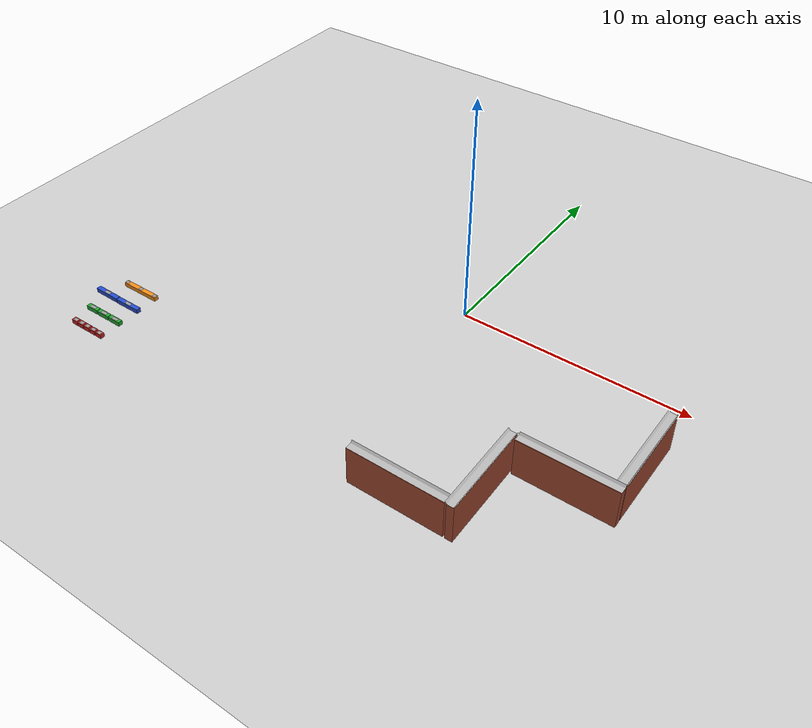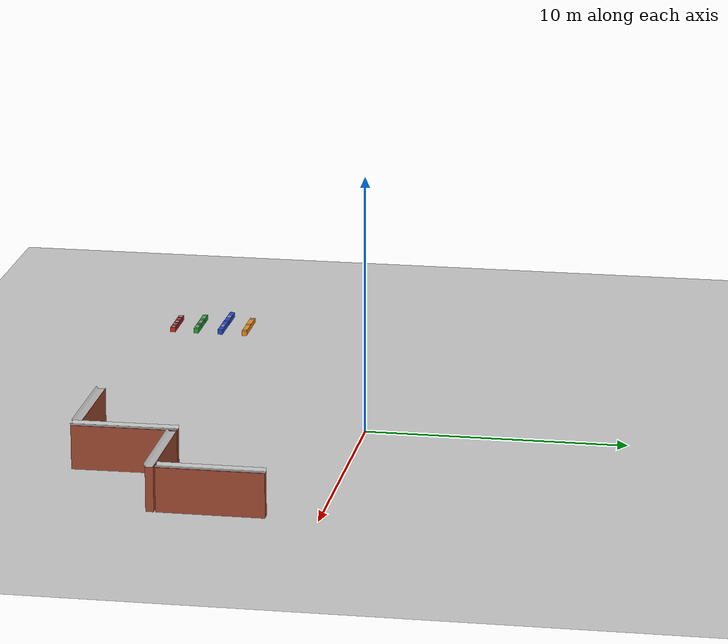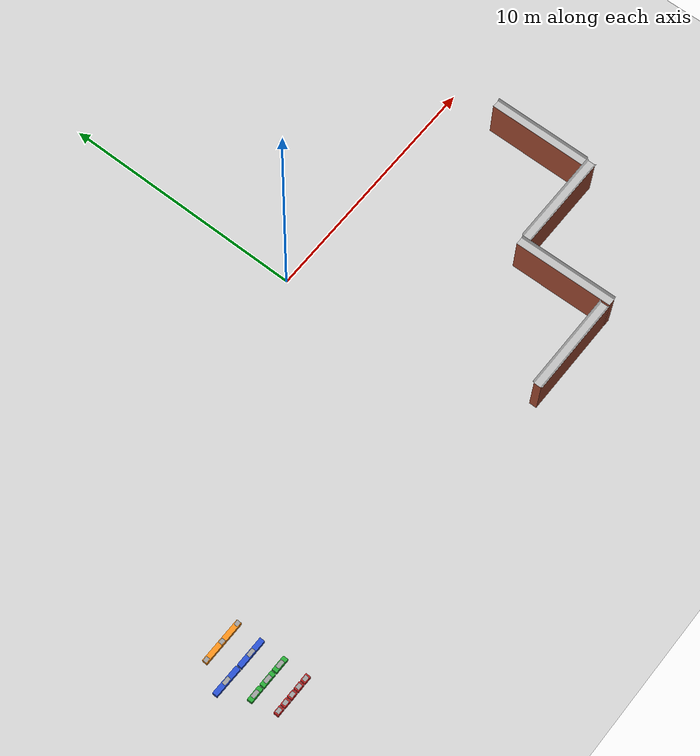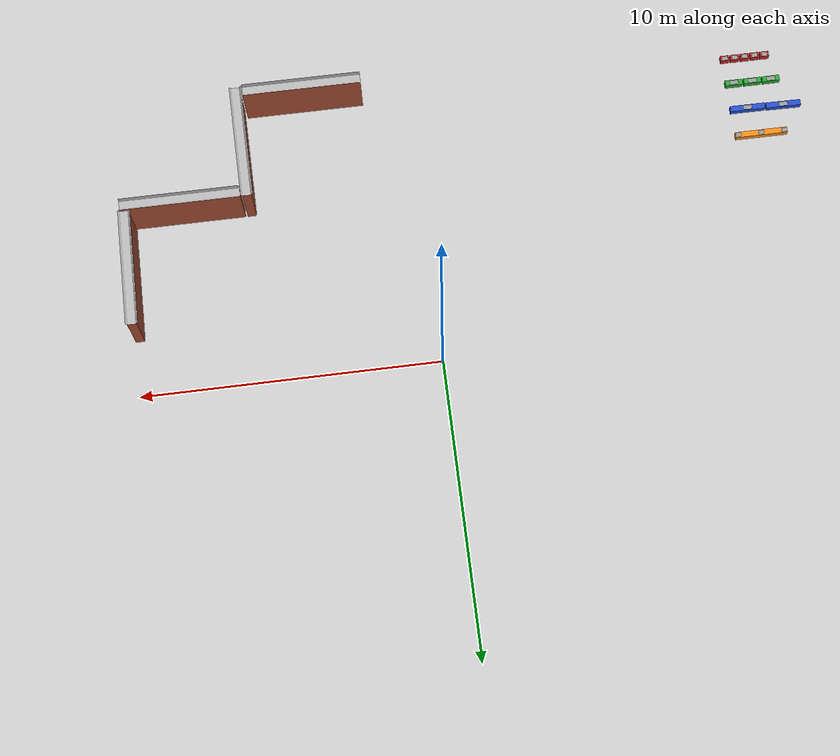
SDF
<sdf version="1.6">
 <world name="default">
  <model name="ground_plane">
   <static>1</static>
   <link name="link">
    <collision name="collision">
     <geometry><plane><normal>0 0 1</normal><size>100 100</size></plane></geometry>
     <surface>
      <contact><collide_bitmask>65535</collide_bitmask></contact>
      <friction><ode><mu>100</mu><mu2>50</mu2></ode></friction>
     </surface>
    </collision>
    <visual name="visual">
     <cast_shadows>0</cast_shadows>
     <geometry><plane><normal>0 0 1</normal><size>100 100</size></plane></geometry>
     <material>
      <script><uri>file://media/materials/scripts/gazebo.material</uri><name>Gazebo/Grey</name></script>
     </material>
    </visual>
   </link>
  </model>
  <model name="high_wall">
   <link name="brick_wall">
    <pose>0 0 0.85 0 -0 0</pose>
    <inertial>
     <mass>0.01</mass>
     <inertia><ixx>0.001</ixx><ixy>0</ixy><ixz>0</ixz><iyy>0.01</iyy><iyz>0</iyz><izz>0.01</izz></inertia>
    </inertial>
    <collision name="brick_wall_collision"><geometry><box><size>4 0.3 1.7</size></box></geometry></collision>
    <visual name="brick_wall_visual">
     <geometry><box><size>4 0.3 1.7</size></box></geometry>
     <material>
      <script><uri>file://media/materials/scripts/gazebo.material</uri><name>Gazebo/Bricks</name></script>
      <ambient>1 1 1 1</ambient>
     </material>
     <meta><layer>0</layer></meta>
    </visual>
   </link>
   <link name="channel">
    <pose>0 0 0.05 0 -0 0</pose>
    <inertial>
     <mass>0.01</mass>
     <inertia><ixx>0.001</ixx><ixy>0</ixy><ixz>0</ixz><iyy>0.01</iyy><iyz>0</iyz><izz>0.01</izz></inertia>
    </inertial>
    <collision name="channel_collision">
     <pose>0 0 1.7 0 -0 0</pose>
     <geometry>
      <mesh><uri>model://larics_gazebo_worlds/models/mbzirc/channel.dae</uri><scale>0.001 0.001 0.001</scale></mesh>
     </geometry>
    </collision>
    <visual name="channel_visual">
     <pose>0 0 1.7 0 -0 0</pose>
     <geometry>
      <mesh><uri>model://larics_gazebo_worlds/models/mbzirc/channel.dae</uri><scale>0.001 0.001 0.001</scale></mesh>
     </geometry>
    </visual>
   </link>
   <joint name="wall_brick" type="fixed"><child>channel</child><parent>brick_wall</parent></joint>
   <static>1</static>
   <pose>7.99888 -6.15157 0 0 -0 0</pose>
  </model>
  <model name="high_wall_1">
   <link name="brick_wall">
    <pose>0 0 0.85 0 -0 0</pose>
    <inertial>
     <mass>0.01</mass>
     <inertia><ixx>0.001</ixx><ixy>0</ixy><ixz>0</ixz><iyy>0.01</iyy><iyz>0</iyz><izz>0.01</izz></inertia>
    </inertial>
    <collision name="brick_wall_collision"><geometry><box><size>4 0.3 1.7</size></box></geometry></collision>
    <visual name="brick_wall_visual">
     <geometry><box><size>4 0.3 1.7</size></box></geometry>
     <material>
      <script><uri>file://media/materials/scripts/gazebo.material</uri><name>Gazebo/Bricks</name></script>
      <ambient>1 1 1 1</ambient>
     </material>
     <meta><layer>0</layer></meta>
    </visual>
   </link>
   <link name="channel">
    <pose>0 0 0.05 0 -0 0</pose>
    <inertial>
     <mass>0.01</mass>
     <inertia><ixx>0.001</ixx><ixy>0</ixy><ixz>0</ixz><iyy>0.01</iyy><iyz>0</iyz><izz>0.01</izz></inertia>
    </inertial>
    <collision name="channel_collision">
     <pose>0 0 1.7 0 -0 0</pose>
     <geometry>
      <mesh><uri>model://larics_gazebo_worlds/models/mbzirc/channel.dae</uri><scale>0.001 0.001 0.001</scale></mesh>
     </geometry>
    </collision>
    <visual name="channel_visual">
     <pose>0 0 1.7 0 -0 0</pose>
     <geometry>
      <mesh><uri>model://larics_gazebo_worlds/models/mbzirc/channel.dae</uri><scale>0.001 0.001 0.001</scale></mesh>
     </geometry>
    </visual>
   </link>
   <joint name="wall_brick" type="fixed"><child>channel</child><parent>brick_wall</parent></joint>
   <static>1</static>
   <pose>3.60405 -9.84494 0 0 -0 0</pose>
  </model>
  <model name="high_wall_2">
   <link name="brick_wall">
    <pose>0 0 0.85 0 -0 0</pose>
    <inertial>
     <mass>0.01</mass>
     <inertia><ixx>0.001</ixx><ixy>0</ixy><ixz>0</ixz><iyy>0.01</iyy><iyz>0</iyz><izz>0.01</izz></inertia>
    </inertial>
    <collision name="brick_wall_collision"><geometry><box><size>4 0.3 1.7</size></box></geometry></collision>
    <visual name="brick_wall_visual">
     <geometry><box><size>4 0.3 1.7</size></box></geometry>
     <material>
      <script><uri>file://media/materials/scripts/gazebo.material</uri><name>Gazebo/Bricks</name></script>
      <ambient>1 1 1 1</ambient>
     </material>
     <meta><layer>0</layer></meta>
    </visual>
   </link>
   <link name="channel">
    <pose>0 0 0.05 0 -0 0</pose>
    <inertial>
     <mass>0.01</mass>
     <inertia><ixx>0.001</ixx><ixy>0</ixy><ixz>0</ixz><iyy>0.01</iyy><iyz>0</iyz><izz>0.01</izz></inertia>
    </inertial>
    <collision name="channel_collision">
     <pose>0 0 1.7 0 -0 0</pose>
     <geometry>
      <mesh><uri>model://larics_gazebo_worlds/models/mbzirc/channel.dae</uri><scale>0.001 0.001 0.001</scale></mesh>
     </geometry>
    </collision>
    <visual name="channel_visual">
     <pose>0 0 1.7 0 -0 0</pose>
     <geometry>
      <mesh><uri>model://larics_gazebo_worlds/models/mbzirc/channel.dae</uri><scale>0.001 0.001 0.001</scale></mesh>
     </geometry>
    </visual>
   </link>
   <joint name="wall_brick" type="fixed"><child>channel</child><parent>brick_wall</parent></joint>
   <static>1</static>
   <pose>5.80516 -7.99976 -0 0 -0 1.58384</pose>
  </model>
  <model name="high_wall_0">
   <link name="brick_wall">
    <pose>0 0 0.85 0 -0 0</pose>
    <inertial>
     <mass>0.01</mass>
     <inertia><ixx>0.001</ixx><ixy>0</ixy><ixz>0</ixz><iyy>0.01</iyy><iyz>0</iyz><izz>0.01</izz></inertia>
    </inertial>
    <collision name="brick_wall_collision"><geometry><box><size>4 0.3 1.7</size></box></geometry></collision>
    <visual name="brick_wall_visual">
     <geometry><box><size>4 0.3 1.7</size></box></geometry>
     <material>
      <script><uri>file://media/materials/scripts/gazebo.material</uri><name>Gazebo/Bricks</name></script>
      <ambient>1 1 1 1</ambient>
     </material>
     <meta><layer>0</layer></meta>
    </visual>
   </link>
   <link name="channel">
    <pose>0 0 0.05 0 -0 0</pose>
    <inertial>
     <mass>0.01</mass>
     <inertia><ixx>0.001</ixx><ixy>0</ixy><ixz>0</ixz><iyy>0.01</iyy><iyz>0</iyz><izz>0.01</izz></inertia>
    </inertial>
    <collision name="channel_collision">
     <pose>0 0 1.7 0 -0 0</pose>
     <geometry>
      <mesh><uri>model://larics_gazebo_worlds/models/mbzirc/channel.dae</uri><scale>0.001 0.001 0.001</scale></mesh>
     </geometry>
    </collision>
    <visual name="channel_visual">
     <pose>0 0 1.7 0 -0 0</pose>
     <geometry>
      <mesh><uri>model://larics_gazebo_worlds/models/mbzirc/channel.dae</uri><scale>0.001 0.001 0.001</scale></mesh>
     </geometry>
    </visual>
   </link>
   <joint name="wall_brick" type="fixed"><child>channel</child><parent>brick_wall</parent></joint>
   <static>1</static>
   <pose>9.8453 -3.93823 -0 0 0 -1.57085</pose>
  </model>
  <model name="brick_red">
   <link name="base_link">
    <inertial>
     <mass>0.01</mass>
     <inertia><ixx>0.001</ixx><ixy>0</ixy><ixz>0</ixz><iyy>0.01</iyy><iyz>0</iyz><izz>0.01</izz></inertia>
    </inertial>
    <collision name="base_link_collision"><geometry><box><size>0.3 0.2 0.2</size></box></geometry></collision>
    <collision name="base_link_fixed_joint_lump__magnet_patch_collision_1">
     <pose>0 0 0.1 0 -0 0</pose>
     <geometry><box><size>0.1 0.025 0.0005</size></box></geometry>
    </collision>
    <visual name="base_link_visual">
     <geometry><box><size>0.3 0.2 0.2</size></box></geometry>
     <material>
      <script><name>Gazebo/Red</name><uri>file://media/materials/scripts/gazebo.material</uri></script>
     </material>
    </visual>
    <visual name="base_link_fixed_joint_lump__magnet_patch_visual_1">
     <pose>0 0 0.1 0 -0 0</pose>
     <geometry><box><size>0.2 0.15 0.001</size></box></geometry>
     <material>
      <script><name>Gazebo/Gray</name><uri>file://media/materials/scripts/gazebo.material</uri></script>
     </material>
    </visual>
   </link>
   <static>0</static>
   <plugin name="dipole_magnet" filename="libstorm_gazebo_dipole_magnet.so">
    <dipole_moment>0 0 1</dipole_moment>
    <shouldPublish>1</shouldPublish>
    <topicNs>magnet</topicNs>
    <updateRate>100</updateRate>
    <gain>1.0</gain>
    <bodyName>base_link</bodyName>
    <xyzOffset>0 0 -0.1</xyzOffset>
    <rpyOffset>0 -0 0</rpyOffset>
   </plugin>
   <pose>-11.1501 -9.84371 0.102794 0.000457 1e-06 9.7e-05</pose>
  </model>
  <model name="brick_red_0">
   <link name="base_link">
    <inertial>
     <mass>0.01</mass>
     <inertia><ixx>0.001</ixx><ixy>0</ixy><ixz>0</ixz><iyy>0.01</iyy><iyz>0</iyz><izz>0.01</izz></inertia>
    </inertial>
    <collision name="base_link_collision"><geometry><box><size>0.3 0.2 0.2</size></box></geometry></collision>
    <collision name="base_link_fixed_joint_lump__magnet_patch_collision_1">
     <pose>0 0 0.1 0 -0 0</pose>
     <geometry><box><size>0.1 0.025 0.0005</size></box></geometry>
    </collision>
    <visual name="base_link_visual">
     <geometry><box><size>0.3 0.2 0.2</size></box></geometry>
     <material>
      <script><name>Gazebo/Red</name><uri>file://media/materials/scripts/gazebo.material</uri></script>
     </material>
    </visual>
    <visual name="base_link_fixed_joint_lump__magnet_patch_visual_1">
     <pose>0 0 0.1 0 -0 0</pose>
     <geometry><box><size>0.2 0.15 0.001</size></box></geometry>
     <material>
      <script><name>Gazebo/Gray</name><uri>file://media/materials/scripts/gazebo.material</uri></script>
     </material>
    </visual>
   </link>
   <static>0</static>
   <plugin name="dipole_magnet" filename="libstorm_gazebo_dipole_magnet.so">
    <dipole_moment>0 0 1</dipole_moment>
    <shouldPublish>1</shouldPublish>
    <topicNs>magnet</topicNs>
    <updateRate>100</updateRate>
    <gain>1.0</gain>
    <bodyName>base_link</bodyName>
    <xyzOffset>0 0 -0.1</xyzOffset>
    <rpyOffset>0 -0 0</rpyOffset>
   </plugin>
   <pose>-11.5001 -9.84372 0.102785 0.000458 1e-06 1e-05</pose>
  </model>
  <model name="brick_red_1">
   <link name="base_link">
    <inertial>
     <mass>0.01</mass>
     <inertia><ixx>0.001</ixx><ixy>0</ixy><ixz>0</ixz><iyy>0.01</iyy><iyz>0</iyz><izz>0.01</izz></inertia>
    </inertial>
    <collision name="base_link_collision"><geometry><box><size>0.3 0.2 0.2</size></box></geometry></collision>
    <collision name="base_link_fixed_joint_lump__magnet_patch_collision_1">
     <pose>0 0 0.1 0 -0 0</pose>
     <geometry><box><size>0.1 0.025 0.0005</size></box></geometry>
    </collision>
    <visual name="base_link_visual">
     <geometry><box><size>0.3 0.2 0.2</size></box></geometry>
     <material>
      <script><name>Gazebo/Red</name><uri>file://media/materials/scripts/gazebo.material</uri></script>
     </material>
    </visual>
    <visual name="base_link_fixed_joint_lump__magnet_patch_visual_1">
     <pose>0 0 0.1 0 -0 0</pose>
     <geometry><box><size>0.2 0.15 0.001</size></box></geometry>
     <material>
      <script><name>Gazebo/Gray</name><uri>file://media/materials/scripts/gazebo.material</uri></script>
     </material>
    </visual>
   </link>
   <static>0</static>
   <plugin name="dipole_magnet" filename="libstorm_gazebo_dipole_magnet.so">
    <dipole_moment>0 0 1</dipole_moment>
    <shouldPublish>1</shouldPublish>
    <topicNs>magnet</topicNs>
    <updateRate>100</updateRate>
    <gain>1.0</gain>
    <bodyName>base_link</bodyName>
    <xyzOffset>0 0 -0.1</xyzOffset>
    <rpyOffset>0 -0 0</rpyOffset>
   </plugin>
   <pose>-11.85 -9.84372 0.102794 0.000457 -0 1e-06</pose>
  </model>
  <model name="brick_red_3">
   <link name="base_link">
    <inertial>
     <mass>0.01</mass>
     <inertia><ixx>0.001</ixx><ixy>0</ixy><ixz>0</ixz><iyy>0.01</iyy><iyz>0</iyz><izz>0.01</izz></inertia>
    </inertial>
    <collision name="base_link_collision"><geometry><box><size>0.3 0.2 0.2</size></box></geometry></collision>
    <collision name="base_link_fixed_joint_lump__magnet_patch_collision_1">
     <pose>0 0 0.1 0 -0 0</pose>
     <geometry><box><size>0.1 0.025 0.0005</size></box></geometry>
    </collision>
    <visual name="base_link_visual">
     <geometry><box><size>0.3 0.2 0.2</size></box></geometry>
     <material>
      <script><name>Gazebo/Red</name><uri>file://media/materials/scripts/gazebo.material</uri></script>
     </material>
    </visual>
    <visual name="base_link_fixed_joint_lump__magnet_patch_visual_1">
     <pose>0 0 0.1 0 -0 0</pose>
     <geometry><box><size>0.2 0.15 0.001</size></box></geometry>
     <material>
      <script><name>Gazebo/Gray</name><uri>file://media/materials/scripts/gazebo.material</uri></script>
     </material>
    </visual>
   </link>
   <static>0</static>
   <plugin name="dipole_magnet" filename="libstorm_gazebo_dipole_magnet.so">
    <dipole_moment>0 0 1</dipole_moment>
    <shouldPublish>1</shouldPublish>
    <topicNs>magnet</topicNs>
    <updateRate>100</updateRate>
    <gain>1.0</gain>
    <bodyName>base_link</bodyName>
    <xyzOffset>0 0 -0.1</xyzOffset>
    <rpyOffset>0 -0 0</rpyOffset>
   </plugin>
   <pose>-12.2001 -9.84372 0.102793 0.000452 -0 0</pose>
  </model>
  <model name="brick_red_4">
   <link name="base_link">
    <inertial>
     <mass>0.01</mass>
     <inertia><ixx>0.001</ixx><ixy>0</ixy><ixz>0</ixz><iyy>0.01</iyy><iyz>0</iyz><izz>0.01</izz></inertia>
    </inertial>
    <collision name="base_link_collision"><geometry><box><size>0.3 0.2 0.2</size></box></geometry></collision>
    <collision name="base_link_fixed_joint_lump__magnet_patch_collision_1">
     <pose>0 0 0.1 0 -0 0</pose>
     <geometry><box><size>0.1 0.025 0.0005</size></box></geometry>
    </collision>
    <visual name="base_link_visual">
     <geometry><box><size>0.3 0.2 0.2</size></box></geometry>
     <material>
      <script><name>Gazebo/Red</name><uri>file://media/materials/scripts/gazebo.material</uri></script>
     </material>
    </visual>
    <visual name="base_link_fixed_joint_lump__magnet_patch_visual_1">
     <pose>0 0 0.1 0 -0 0</pose>
     <geometry><box><size>0.2 0.15 0.001</size></box></geometry>
     <material>
      <script><name>Gazebo/Gray</name><uri>file://media/materials/scripts/gazebo.material</uri></script>
     </material>
    </visual>
   </link>
   <static>0</static>
   <plugin name="dipole_magnet" filename="libstorm_gazebo_dipole_magnet.so">
    <dipole_moment>0 0 1</dipole_moment>
    <shouldPublish>1</shouldPublish>
    <topicNs>magnet</topicNs>
    <updateRate>100</updateRate>
    <gain>1.0</gain>
    <bodyName>base_link</bodyName>
    <xyzOffset>0 0 -0.1</xyzOffset>
    <rpyOffset>0 -0 0</rpyOffset>
   </plugin>
   <pose>-12.55 -9.84336 0.102785 0.000462 -0 0.00245</pose>
  </model>
  <model name="brick_green_2">
   <link name="base_link">
    <inertial>
     <mass>0.01</mass>
     <inertia><ixx>0.001</ixx><ixy>0</ixy><ixz>0</ixz><iyy>0.01</iyy><iyz>0</iyz><izz>0.01</izz></inertia>
    </inertial>
    <collision name="base_link_collision"><geometry><box><size>0.6 0.2 0.2</size></box></geometry></collision>
    <collision name="base_link_fixed_joint_lump__magnet_patch_collision_1">
     <pose>0 0 0.1 0 -0 0</pose>
     <geometry><box><size>0.1 0.025 0.0005</size></box></geometry>
    </collision>
    <visual name="base_link_visual">
     <geometry><box><size>0.6 0.2 0.2</size></box></geometry>
     <material>
      <script><name>Gazebo/Green</name><uri>file://media/materials/scripts/gazebo.material</uri></script>
     </material>
    </visual>
    <visual name="base_link_fixed_joint_lump__magnet_patch_visual_1">
     <pose>0 0 0.1 0 -0 0</pose>
     <geometry><box><size>0.3 0.15 0.001</size></box></geometry>
     <material>
      <script><name>Gazebo/Gray</name><uri>file://media/materials/scripts/gazebo.material</uri></script>
     </material>
    </visual>
   </link>
   <static>0</static>
   <plugin name="dipole_magnet" filename="libstorm_gazebo_dipole_magnet.so">
    <dipole_moment>0 0 1</dipole_moment>
    <shouldPublish>1</shouldPublish>
    <topicNs>magnet</topicNs>
    <updateRate>100</updateRate>
    <gain>1.0</gain>
    <bodyName>base_link</bodyName>
    <xyzOffset>0 0 -0.1</xyzOffset>
    <rpyOffset>0 -0 0</rpyOffset>
   </plugin>
   <pose>-12.6001 -8.87958 0.102795 0.000456 -5e-06 0.011744</pose>
  </model>
  <model name="brick_green_3">
   <link name="base_link">
    <inertial>
     <mass>0.01</mass>
     <inertia><ixx>0.001</ixx><ixy>0</ixy><ixz>0</ixz><iyy>0.01</iyy><iyz>0</iyz><izz>0.01</izz></inertia>
    </inertial>
    <collision name="base_link_collision"><geometry><box><size>0.6 0.2 0.2</size></box></geometry></collision>
    <collision name="base_link_fixed_joint_lump__magnet_patch_collision_1">
     <pose>0 0 0.1 0 -0 0</pose>
     <geometry><box><size>0.1 0.025 0.0005</size></box></geometry>
    </collision>
    <visual name="base_link_visual">
     <geometry><box><size>0.6 0.2 0.2</size></box></geometry>
     <material>
      <script><name>Gazebo/Green</name><uri>file://media/materials/scripts/gazebo.material</uri></script>
     </material>
    </visual>
    <visual name="base_link_fixed_joint_lump__magnet_patch_visual_1">
     <pose>0 0 0.1 0 -0 0</pose>
     <geometry><box><size>0.3 0.15 0.001</size></box></geometry>
     <material>
      <script><name>Gazebo/Gray</name><uri>file://media/materials/scripts/gazebo.material</uri></script>
     </material>
    </visual>
   </link>
   <static>0</static>
   <plugin name="dipole_magnet" filename="libstorm_gazebo_dipole_magnet.so">
    <dipole_moment>0 0 1</dipole_moment>
    <shouldPublish>1</shouldPublish>
    <topicNs>magnet</topicNs>
    <updateRate>100</updateRate>
    <gain>1.0</gain>
    <bodyName>base_link</bodyName>
    <xyzOffset>0 0 -0.1</xyzOffset>
    <rpyOffset>0 -0 0</rpyOffset>
   </plugin>
   <pose>-11.2999 -8.87936 0.102797 0.000476 0 0.000169</pose>
  </model>
  <model name="brick_green_4">
   <link name="base_link">
    <inertial>
     <mass>0.01</mass>
     <inertia><ixx>0.001</ixx><ixy>0</ixy><ixz>0</ixz><iyy>0.01</iyy><iyz>0</iyz><izz>0.01</izz></inertia>
    </inertial>
    <collision name="base_link_collision"><geometry><box><size>0.6 0.2 0.2</size></box></geometry></collision>
    <collision name="base_link_fixed_joint_lump__magnet_patch_collision_1">
     <pose>0 0 0.1 0 -0 0</pose>
     <geometry><box><size>0.1 0.025 0.0005</size></box></geometry>
    </collision>
    <visual name="base_link_visual">
     <geometry><box><size>0.6 0.2 0.2</size></box></geometry>
     <material>
      <script><name>Gazebo/Green</name><uri>file://media/materials/scripts/gazebo.material</uri></script>
     </material>
    </visual>
    <visual name="base_link_fixed_joint_lump__magnet_patch_visual_1">
     <pose>0 0 0.1 0 -0 0</pose>
     <geometry><box><size>0.3 0.15 0.001</size></box></geometry>
     <material>
      <script><name>Gazebo/Gray</name><uri>file://media/materials/scripts/gazebo.material</uri></script>
     </material>
    </visual>
   </link>
   <static>0</static>
   <plugin name="dipole_magnet" filename="libstorm_gazebo_dipole_magnet.so">
    <dipole_moment>0 0 1</dipole_moment>
    <shouldPublish>1</shouldPublish>
    <topicNs>magnet</topicNs>
    <updateRate>100</updateRate>
    <gain>1.0</gain>
    <bodyName>base_link</bodyName>
    <xyzOffset>0 0 -0.1</xyzOffset>
    <rpyOffset>0 -0 0</rpyOffset>
   </plugin>
   <pose>-11.95 -8.87936 0.102795 0.000457 1e-06 -0.001224</pose>
  </model>
  <model name="brick_blue_0">
   <link name="base_link">
    <inertial>
     <mass>0.01</mass>
     <inertia><ixx>0.001</ixx><ixy>0</ixy><ixz>0</ixz><iyy>0.01</iyy><iyz>0</iyz><izz>0.01</izz></inertia>
    </inertial>
    <collision name="base_link_collision"><geometry><box><size>1.2 0.2 0.2</size></box></geometry></collision>
    <collision name="base_link_fixed_joint_lump__magnet_patch_collision_1">
     <pose>0 0 0.1 0 -0 0</pose>
     <geometry><box><size>0.1 0.025 0.0005</size></box></geometry>
    </collision>
    <visual name="base_link_visual">
     <geometry><box><size>1.2 0.2 0.2</size></box></geometry>
     <material>
      <script><name>Gazebo/Blue</name><uri>file://media/materials/scripts/gazebo.material</uri></script>
     </material>
    </visual>
    <visual name="base_link_fixed_joint_lump__magnet_patch_visual_1">
     <pose>0 0 0.1 0 -0 0</pose>
     <geometry><box><size>0.3 0.15 0.001</size></box></geometry>
     <material>
      <script><name>Gazebo/Gray</name><uri>file://media/materials/scripts/gazebo.material</uri></script>
     </material>
    </visual>
   </link>
   <static>0</static>
   <plugin name="dipole_magnet" filename="libstorm_gazebo_dipole_magnet.so">
    <dipole_moment>0 0 1</dipole_moment>
    <shouldPublish>1</shouldPublish>
    <topicNs>magnet</topicNs>
    <updateRate>100</updateRate>
    <gain>1.0</gain>
    <bodyName>base_link</bodyName>
    <xyzOffset>0 0 -0.1</xyzOffset>
    <rpyOffset>0 -0 0</rpyOffset>
   </plugin>
   <pose>-11.6 -7.87436 0.102802 0.000458 -3e-06 -0.001973</pose>
  </model>
  <model name="brick_blue_1">
   <link name="base_link">
    <inertial>
     <mass>0.01</mass>
     <inertia><ixx>0.001</ixx><ixy>0</ixy><ixz>0</ixz><iyy>0.01</iyy><iyz>0</iyz><izz>0.01</izz></inertia>
    </inertial>
    <collision name="base_link_collision"><geometry><box><size>1.2 0.2 0.2</size></box></geometry></collision>
    <collision name="base_link_fixed_joint_lump__magnet_patch_collision_1">
     <pose>0 0 0.1 0 -0 0</pose>
     <geometry><box><size>0.1 0.025 0.0005</size></box></geometry>
    </collision>
    <visual name="base_link_visual">
     <geometry><box><size>1.2 0.2 0.2</size></box></geometry>
     <material>
      <script><name>Gazebo/Blue</name><uri>file://media/materials/scripts/gazebo.material</uri></script>
     </material>
    </visual>
    <visual name="base_link_fixed_joint_lump__magnet_patch_visual_1">
     <pose>0 0 0.1 0 -0 0</pose>
     <geometry><box><size>0.3 0.15 0.001</size></box></geometry>
     <material>
      <script><name>Gazebo/Gray</name><uri>file://media/materials/scripts/gazebo.material</uri></script>
     </material>
    </visual>
   </link>
   <static>0</static>
   <plugin name="dipole_magnet" filename="libstorm_gazebo_dipole_magnet.so">
    <dipole_moment>0 0 1</dipole_moment>
    <shouldPublish>1</shouldPublish>
    <topicNs>magnet</topicNs>
    <updateRate>100</updateRate>
    <gain>1.0</gain>
    <bodyName>base_link</bodyName>
    <xyzOffset>0 0 -0.1</xyzOffset>
    <rpyOffset>0 -0 0</rpyOffset>
   </plugin>
   <pose>-12.85 -7.85736 0.102812 0.000457 5e-06 -0.011682</pose>
  </model>
  <model name="brick_orange">
   <link name="base_link">
    <inertial>
     <mass>0.01</mass>
     <inertia><ixx>0.001</ixx><ixy>0</ixy><ixz>0</ixz><iyy>0.01</iyy><iyz>0</iyz><izz>0.01</izz></inertia>
    </inertial>
    <collision name="base_link_collision"><geometry><box><size>1.8 0.2 0.2</size></box></geometry></collision>
    <collision name="base_link_fixed_joint_lump__magnet_patch_collision_0">
     <pose>-0.805 0 0.1 0 -0 0</pose>
     <geometry><box><size>0.2 0.15 0.0005</size></box></geometry>
    </collision>
    <collision name="base_link_fixed_joint_lump__magnet_patch_collision_1">
     <pose>0 0 0.1 0 -0 0</pose>
     <geometry><box><size>0.15 0.15 0.0005</size></box></geometry>
    </collision>
    <collision name="base_link_fixed_joint_lump__magnet_patch_collision_2">
     <pose>0.805 0 0.1 0 -0 0</pose>
     <geometry><box><size>0.15 0.15 0.0005</size></box></geometry>
    </collision>
    <visual name="base_link_visual">
     <geometry><box><size>1.8 0.2 0.2</size></box></geometry>
     <material>
      <script><name>Gazebo/Orange</name><uri>file://media/materials/scripts/gazebo.material</uri></script>
     </material>
    </visual>
    <visual name="base_link_fixed_joint_lump__magnet_patch_visual_0">
     <pose>-0.805 0 0.1 0 -0 0</pose>
     <geometry><box><size>0.19 0.15 0.001</size></box></geometry>
     <material>
      <script><name>Gazebo/Gray</name><uri>file://media/materials/scripts/gazebo.material</uri></script>
     </material>
    </visual>
    <visual name="base_link_fixed_joint_lump__magnet_patch_visual_1">
     <pose>0 0 0.1 0 -0 0</pose>
     <geometry><box><size>0.19 0.15 0.001</size></box></geometry>
     <material>
      <script><name>Gazebo/Gray</name><uri>file://media/materials/scripts/gazebo.material</uri></script>
     </material>
    </visual>
    <visual name="base_link_fixed_joint_lump__magnet_patch_visual_2">
     <pose>0.805 0 0.1 0 -0 0</pose>
     <geometry><box><size>0.19 0.15 0.001</size></box></geometry>
     <material>
      <script><name>Gazebo/Gray</name><uri>file://media/materials/scripts/gazebo.material</uri></script>
     </material>
    </visual>
   </link>
   <static>0</static>
   <plugin name="dipole_magnet" filename="libstorm_gazebo_dipole_magnet.so">
    <dipole_moment>0 0 1</dipole_moment>
    <shouldPublish>1</shouldPublish>
    <topicNs>magnet</topicNs>
    <updateRate>100</updateRate>
    <gain>1.0</gain>
    <bodyName>base_link</bodyName>
    <xyzOffset>0 0 -0.1</xyzOffset>
    <rpyOffset>0 -0 0</rpyOffset>
   </plugin>
   <plugin name="dipole_magnet" filename="libstorm_gazebo_dipole_magnet.so">
    <dipole_moment>0 0 1</dipole_moment>
    <shouldPublish>1</shouldPublish>
    <topicNs>magnet</topicNs>
    <updateRate>100</updateRate>
    <gain>1.0</gain>
    <bodyName>base_link</bodyName>
    <xyzOffset>-0.805 0 -0.1</xyzOffset>
    <rpyOffset>0 -0 0</rpyOffset>
   </plugin>
   <plugin name="dipole_magnet" filename="libstorm_gazebo_dipole_magnet.so">
    <dipole_moment>0 0 1</dipole_moment>
    <shouldPublish>1</shouldPublish>
    <topicNs>magnet</topicNs>
    <updateRate>100</updateRate>
    <gain>1.0</gain>
    <bodyName>base_link</bodyName>
    <xyzOffset>0.805 0 -0.1</xyzOffset>
    <rpyOffset>0 -0 0</rpyOffset>
   </plugin>
   <pose>-11.9 -6.87332 0.102793 0.000454 4e-06 -0.000229</pose>
  </model>
 </world>
</sdf>
